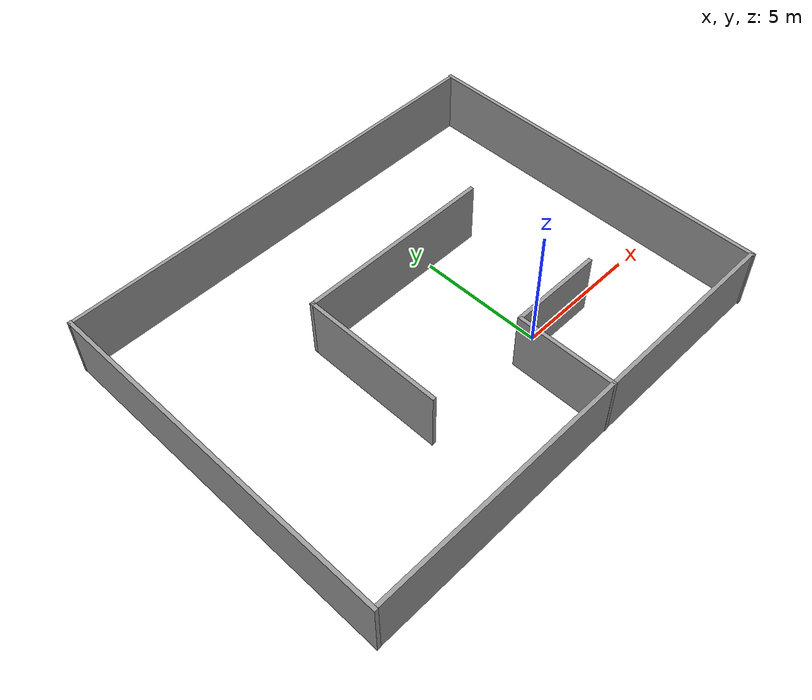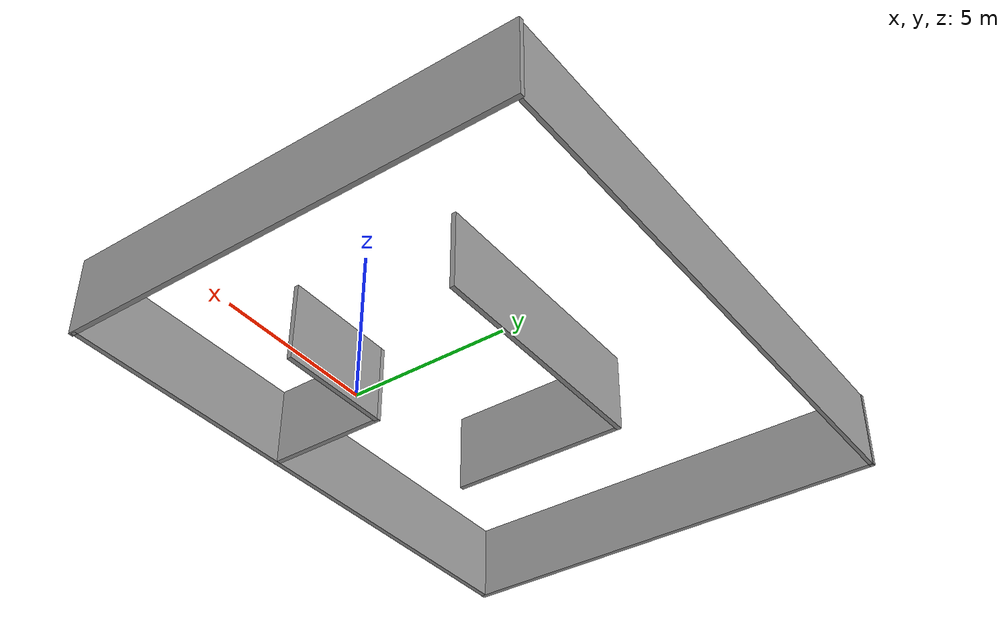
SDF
<?xml version='1.0'?>
<sdf version='1.7'>
  <model name='demo_race_track2'>
    <link name='Wall_10'>
      <pose>0.522756 -0.328861 0 0 -0 0</pose>
      <self_collide>0</self_collide>
      <enable_wind>0</enable_wind>
      <kinematic>0</kinematic>
      <visual name='Wall_10_Visual'>
        <pose>0 0 1.25 0 -0 0</pose>
        <geometry>
          <box>
            <size>3.75 0.15 2.5</size>
          </box>
        </geometry>
        <material>
          <script>
            <uri>file://media/materials/scripts/gazebo.material</uri>
            <name>Gazebo/Grey</name>
          </script>
          <ambient>1 1 1 1</ambient>
          <shader type='pixel'/>
        </material>
        <meta>
          <layer>0</layer>
        </meta>
        <transparency>0</transparency>
        <cast_shadows>1</cast_shadows>
      </visual>
      <collision name='Wall_10_Collision'>
        <laser_retro>0</laser_retro>
        <max_contacts>10</max_contacts>
        <pose>0 0 1.25 0 -0 0</pose>
        <geometry>
          <box>
            <size>3.75 0.15 2.5</size>
          </box>
        </geometry>
        <surface>
          <friction>
            <ode>
              <mu>1</mu>
              <mu2>1</mu2>
              <fdir1>0 0 0</fdir1>
              <slip1>0</slip1>
              <slip2>0</slip2>
            </ode>
            <torsional>
              <coefficient>1</coefficient>
              <patch_radius>0</patch_radius>
              <surface_radius>0</surface_radius>
              <use_patch_radius>1</use_patch_radius>
              <ode>
                <slip>0</slip>
              </ode>
            </torsional>
          </friction>
          <bounce>
            <restitution_coefficient>0</restitution_coefficient>
            <threshold>1e+06</threshold>
          </bounce>
          <contact>
            <collide_without_contact>0</collide_without_contact>
            <collide_without_contact_bitmask>1</collide_without_contact_bitmask>
            <collide_bitmask>1</collide_bitmask>
            <ode>
              <soft_cfm>0</soft_cfm>
              <soft_erp>0.2</soft_erp>
              <kp>1e+13</kp>
              <kd>1</kd>
              <max_vel>0.01</max_vel>
              <min_depth>0</min_depth>
            </ode>
            <bullet>
              <split_impulse>1</split_impulse>
              <split_impulse_penetration_threshold>-0.01</split_impulse_penetration_threshold>
              <soft_cfm>0</soft_cfm>
              <soft_erp>0.2</soft_erp>
              <kp>1e+13</kp>
              <kd>1</kd>
            </bullet>
          </contact>
        </surface>
      </collision>
    </link>
    <link name='Wall_14'>
      <pose>-5.62865 2.25752 0 0 -0 1.5708</pose>
      <self_collide>0</self_collide>
      <enable_wind>0</enable_wind>
      <kinematic>0</kinematic>
      <inertial>
        <inertia>
          <ixx>0</ixx>
          <ixy>0</ixy>
          <ixz>0</ixz>
          <iyy>0</iyy>
          <iyz>0</iyz>
          <izz>0</izz>
        </inertia>
        <mass>0</mass>
        <pose>0 0 0 0 -0 0</pose>
      </inertial>
      <visual name='Wall_14_Visual'>
        <pose>0 0 1.25 0 -0 0</pose>
        <geometry>
          <box>
            <size>5.68084 0.15 2.5</size>
          </box>
        </geometry>
        <material>
          <script>
            <uri>file://media/materials/scripts/gazebo.material</uri>
            <name>Gazebo/Grey</name>
          </script>
          <ambient>1 1 1 1</ambient>
          <shader type='pixel'/>
        </material>
        <meta>
          <layer>0</layer>
        </meta>
        <transparency>0</transparency>
        <cast_shadows>1</cast_shadows>
      </visual>
      <collision name='Wall_14_Collision'>
        <laser_retro>0</laser_retro>
        <max_contacts>10</max_contacts>
        <pose>0 0 1.25 0 -0 0</pose>
        <geometry>
          <box>
            <size>5.68084 0.15 2.5</size>
          </box>
        </geometry>
        <surface>
          <friction>
            <ode>
              <mu>1</mu>
              <mu2>1</mu2>
              <fdir1>0 0 0</fdir1>
              <slip1>0</slip1>
              <slip2>0</slip2>
            </ode>
            <torsional>
              <coefficient>1</coefficient>
              <patch_radius>0</patch_radius>
              <surface_radius>0</surface_radius>
              <use_patch_radius>1</use_patch_radius>
              <ode>
                <slip>0</slip>
              </ode>
            </torsional>
          </friction>
          <bounce>
            <restitution_coefficient>0</restitution_coefficient>
            <threshold>1e+06</threshold>
          </bounce>
          <contact>
            <collide_without_contact>0</collide_without_contact>
            <collide_without_contact_bitmask>1</collide_without_contact_bitmask>
            <collide_bitmask>1</collide_bitmask>
            <ode>
              <soft_cfm>0</soft_cfm>
              <soft_erp>0.2</soft_erp>
              <kp>1e+13</kp>
              <kd>1</kd>
              <max_vel>0.01</max_vel>
              <min_depth>0</min_depth>
            </ode>
            <bullet>
              <split_impulse>1</split_impulse>
              <split_impulse_penetration_threshold>-0.01</split_impulse_penetration_threshold>
              <soft_cfm>0</soft_cfm>
              <soft_erp>0.2</soft_erp>
              <kp>1e+13</kp>
              <kd>1</kd>
            </bullet>
          </contact>
        </surface>
      </collision>
    </link>
    <link name='Wall_15'>
      <pose>-1.74057 5.02435 0 0 -0 0</pose>
      <self_collide>0</self_collide>
      <enable_wind>0</enable_wind>
      <kinematic>0</kinematic>
      <inertial>
        <inertia>
          <ixx>0</ixx>
          <ixy>0</ixy>
          <ixz>0</ixz>
          <iyy>0</iyy>
          <iyz>0</iyz>
          <izz>0</izz>
        </inertia>
        <mass>0</mass>
        <pose>0 0 0 0 -0 0</pose>
      </inertial>
      <visual name='Wall_15_Visual'>
        <pose>0 0 1.25 0 -0 0</pose>
        <geometry>
          <box>
            <size>7.92685 0.15 2.5</size>
          </box>
        </geometry>
        <material>
          <script>
            <uri>file://media/materials/scripts/gazebo.material</uri>
            <name>Gazebo/Grey</name>
          </script>
          <ambient>1 1 1 1</ambient>
          <shader type='pixel'/>
        </material>
        <meta>
          <layer>0</layer>
        </meta>
        <transparency>0</transparency>
        <cast_shadows>1</cast_shadows>
      </visual>
      <collision name='Wall_15_Collision'>
        <laser_retro>0</laser_retro>
        <max_contacts>10</max_contacts>
        <pose>0 0 1.25 0 -0 0</pose>
        <geometry>
          <box>
            <size>7.92685 0.15 2.5</size>
          </box>
        </geometry>
        <surface>
          <friction>
            <ode>
              <mu>1</mu>
              <mu2>1</mu2>
              <fdir1>0 0 0</fdir1>
              <slip1>0</slip1>
              <slip2>0</slip2>
            </ode>
            <torsional>
              <coefficient>1</coefficient>
              <patch_radius>0</patch_radius>
              <surface_radius>0</surface_radius>
              <use_patch_radius>1</use_patch_radius>
              <ode>
                <slip>0</slip>
              </ode>
            </torsional>
          </friction>
          <bounce>
            <restitution_coefficient>0</restitution_coefficient>
            <threshold>1e+06</threshold>
          </bounce>
          <contact>
            <collide_without_contact>0</collide_without_contact>
            <collide_without_contact_bitmask>1</collide_without_contact_bitmask>
            <collide_bitmask>1</collide_bitmask>
            <ode>
              <soft_cfm>0</soft_cfm>
              <soft_erp>0.2</soft_erp>
              <kp>1e+13</kp>
              <kd>1</kd>
              <max_vel>0.01</max_vel>
              <min_depth>0</min_depth>
            </ode>
            <bullet>
              <split_impulse>1</split_impulse>
              <split_impulse_penetration_threshold>-0.01</split_impulse_penetration_threshold>
              <soft_cfm>0</soft_cfm>
              <soft_erp>0.2</soft_erp>
              <kp>1e+13</kp>
              <kd>1</kd>
            </bullet>
          </contact>
        </surface>
      </collision>
    </link>
    <link name='Wall_4'>
      <pose>6.49769 2.94937 0 0 -0 1.5708</pose>
      <self_collide>0</self_collide>
      <enable_wind>0</enable_wind>
      <kinematic>0</kinematic>
      <inertial>
        <inertia>
          <ixx>0</ixx>
          <ixy>0</ixy>
          <ixz>0</ixz>
          <iyy>0</iyy>
          <iyz>0</iyz>
          <izz>0</izz>
        </inertia>
        <mass>0</mass>
        <pose>0 0 0 0 -0 0</pose>
      </inertial>
      <visual name='Wall_4_Visual'>
        <pose>0 0 1.25 0 -0 0</pose>
        <geometry>
          <box>
            <size>14.485 0.15 2.5</size>
          </box>
        </geometry>
        <material>
          <script>
            <uri>file://media/materials/scripts/gazebo.material</uri>
            <name>Gazebo/Grey</name>
          </script>
          <ambient>1 1 1 1</ambient>
          <shader type='pixel'/>
        </material>
        <meta>
          <layer>0</layer>
        </meta>
        <transparency>0</transparency>
        <cast_shadows>1</cast_shadows>
      </visual>
      <collision name='Wall_4_Collision'>
        <laser_retro>0</laser_retro>
        <max_contacts>10</max_contacts>
        <pose>0 0 1.25 0 -0 0</pose>
        <geometry>
          <box>
            <size>14.485 0.15 2.5</size>
          </box>
        </geometry>
        <surface>
          <friction>
            <ode>
              <mu>1</mu>
              <mu2>1</mu2>
              <fdir1>0 0 0</fdir1>
              <slip1>0</slip1>
              <slip2>0</slip2>
            </ode>
            <torsional>
              <coefficient>1</coefficient>
              <patch_radius>0</patch_radius>
              <surface_radius>0</surface_radius>
              <use_patch_radius>1</use_patch_radius>
              <ode>
                <slip>0</slip>
              </ode>
            </torsional>
          </friction>
          <bounce>
            <restitution_coefficient>0</restitution_coefficient>
            <threshold>1e+06</threshold>
          </bounce>
          <contact>
            <collide_without_contact>0</collide_without_contact>
            <collide_without_contact_bitmask>1</collide_without_contact_bitmask>
            <collide_bitmask>1</collide_bitmask>
            <ode>
              <soft_cfm>0</soft_cfm>
              <soft_erp>0.2</soft_erp>
              <kp>1e+13</kp>
              <kd>1</kd>
              <max_vel>0.01</max_vel>
              <min_depth>0</min_depth>
            </ode>
            <bullet>
              <split_impulse>1</split_impulse>
              <split_impulse_penetration_threshold>-0.01</split_impulse_penetration_threshold>
              <soft_cfm>0</soft_cfm>
              <soft_erp>0.2</soft_erp>
              <kp>1e+13</kp>
              <kd>1</kd>
            </bullet>
          </contact>
        </surface>
      </collision>
    </link>
    <link name='Wall_5'>
      <pose>-2.68974 10.0886 0 0 -0 3.14159</pose>
      <self_collide>0</self_collide>
      <enable_wind>0</enable_wind>
      <kinematic>0</kinematic>
      <inertial>
        <inertia>
          <ixx>0</ixx>
          <ixy>0</ixy>
          <ixz>0</ixz>
          <iyy>0</iyy>
          <iyz>0</iyz>
          <izz>0</izz>
        </inertia>
        <mass>0</mass>
        <pose>0 0 0 0 -0 0</pose>
      </inertial>
      <visual name='Wall_5_Visual'>
        <pose>0 0 1.25 0 -0 0</pose>
        <geometry>
          <box>
            <size>18.2163 0.127451 2.5</size>
          </box>
        </geometry>
        <material>
          <script>
            <uri>file://media/materials/scripts/gazebo.material</uri>
            <name>Gazebo/Grey</name>
          </script>
          <ambient>1 1 1 1</ambient>
          <shader type='pixel'/>
        </material>
        <meta>
          <layer>0</layer>
        </meta>
        <transparency>0</transparency>
        <cast_shadows>1</cast_shadows>
      </visual>
      <collision name='Wall_5_Collision'>
        <laser_retro>0</laser_retro>
        <max_contacts>10</max_contacts>
        <pose>0 0 1.25 0 -0 0</pose>
        <geometry>
          <box>
            <size>18.2163 0.127451 2.5</size>
          </box>
        </geometry>
        <surface>
          <friction>
            <ode>
              <mu>1</mu>
              <mu2>1</mu2>
              <fdir1>0 0 0</fdir1>
              <slip1>0</slip1>
              <slip2>0</slip2>
            </ode>
            <torsional>
              <coefficient>1</coefficient>
              <patch_radius>0</patch_radius>
              <surface_radius>0</surface_radius>
              <use_patch_radius>1</use_patch_radius>
              <ode>
                <slip>0</slip>
              </ode>
            </torsional>
          </friction>
          <bounce>
            <restitution_coefficient>0</restitution_coefficient>
            <threshold>1e+06</threshold>
          </bounce>
          <contact>
            <collide_without_contact>0</collide_without_contact>
            <collide_without_contact_bitmask>1</collide_without_contact_bitmask>
            <collide_bitmask>1</collide_bitmask>
            <ode>
              <soft_cfm>0</soft_cfm>
              <soft_erp>0.2</soft_erp>
              <kp>1e+13</kp>
              <kd>1</kd>
              <max_vel>0.01</max_vel>
              <min_depth>0</min_depth>
            </ode>
            <bullet>
              <split_impulse>1</split_impulse>
              <split_impulse_penetration_threshold>-0.01</split_impulse_penetration_threshold>
              <soft_cfm>0</soft_cfm>
              <soft_erp>0.2</soft_erp>
              <kp>1e+13</kp>
              <kd>1</kd>
            </bullet>
          </contact>
        </surface>
      </collision>
    </link>
    <link name='Wall_6'>
      <pose>-11.7177 2.95873 0 0 0 -1.5708</pose>
      <self_collide>0</self_collide>
      <enable_wind>0</enable_wind>
      <kinematic>0</kinematic>
      <inertial>
        <inertia>
          <ixx>0</ixx>
          <ixy>0</ixy>
          <ixz>0</ixz>
          <iyy>0</iyy>
          <iyz>0</iyz>
          <izz>0</izz>
        </inertia>
        <mass>0</mass>
        <pose>0 0 0 0 -0 0</pose>
      </inertial>
      <visual name='Wall_6_Visual'>
        <pose>0 0 1.25 0 -0 0</pose>
        <geometry>
          <box>
            <size>14.4251 0.15 2.5</size>
          </box>
        </geometry>
        <material>
          <script>
            <uri>file://media/materials/scripts/gazebo.material</uri>
            <name>Gazebo/Grey</name>
          </script>
          <ambient>1 1 1 1</ambient>
          <shader type='pixel'/>
        </material>
        <meta>
          <layer>0</layer>
        </meta>
        <transparency>0</transparency>
        <cast_shadows>1</cast_shadows>
      </visual>
      <collision name='Wall_6_Collision'>
        <laser_retro>0</laser_retro>
        <max_contacts>10</max_contacts>
        <pose>0 0 1.25 0 -0 0</pose>
        <geometry>
          <box>
            <size>14.4251 0.15 2.5</size>
          </box>
        </geometry>
        <surface>
          <friction>
            <ode>
              <mu>1</mu>
              <mu2>1</mu2>
              <fdir1>0 0 0</fdir1>
              <slip1>0</slip1>
              <slip2>0</slip2>
            </ode>
            <torsional>
              <coefficient>1</coefficient>
              <patch_radius>0</patch_radius>
              <surface_radius>0</surface_radius>
              <use_patch_radius>1</use_patch_radius>
              <ode>
                <slip>0</slip>
              </ode>
            </torsional>
          </friction>
          <bounce>
            <restitution_coefficient>0</restitution_coefficient>
            <threshold>1e+06</threshold>
          </bounce>
          <contact>
            <collide_without_contact>0</collide_without_contact>
            <collide_without_contact_bitmask>1</collide_without_contact_bitmask>
            <collide_bitmask>1</collide_bitmask>
            <ode>
              <soft_cfm>0</soft_cfm>
              <soft_erp>0.2</soft_erp>
              <kp>1e+13</kp>
              <kd>1</kd>
              <max_vel>0.01</max_vel>
              <min_depth>0</min_depth>
            </ode>
            <bullet>
              <split_impulse>1</split_impulse>
              <split_impulse_penetration_threshold>-0.01</split_impulse_penetration_threshold>
              <soft_cfm>0</soft_cfm>
              <soft_erp>0.2</soft_erp>
              <kp>1e+13</kp>
              <kd>1</kd>
            </bullet>
          </contact>
        </surface>
      </collision>
    </link>
    <link name='Wall_7'>
      <pose>-2.55902 -4.17114 0 0 -0 0</pose>
      <self_collide>0</self_collide>
      <enable_wind>0</enable_wind>
      <kinematic>0</kinematic>
      <inertial>
        <inertia>
          <ixx>0</ixx>
          <ixy>0</ixy>
          <ixz>0</ixz>
          <iyy>0</iyy>
          <iyz>0</iyz>
          <izz>0</izz>
        </inertia>
        <mass>0</mass>
        <pose>0 0 0 0 -0 0</pose>
      </inertial>
      <visual name='Wall_7_Visual'>
        <pose>0 0 1.25 0 -0 0</pose>
        <geometry>
          <box>
            <size>18.1844 0.15 2.5</size>
          </box>
        </geometry>
        <material>
          <script>
            <uri>file://media/materials/scripts/gazebo.material</uri>
            <name>Gazebo/Grey</name>
          </script>
          <ambient>1 1 1 1</ambient>
          <shader type='pixel'/>
        </material>
        <meta>
          <layer>0</layer>
        </meta>
        <transparency>0</transparency>
        <cast_shadows>1</cast_shadows>
      </visual>
      <collision name='Wall_7_Collision'>
        <laser_retro>0</laser_retro>
        <max_contacts>10</max_contacts>
        <pose>0 0 1.25 0 -0 0</pose>
        <geometry>
          <box>
            <size>18.1844 0.15 2.5</size>
          </box>
        </geometry>
        <surface>
          <friction>
            <ode>
              <mu>1</mu>
              <mu2>1</mu2>
              <fdir1>0 0 0</fdir1>
              <slip1>0</slip1>
              <slip2>0</slip2>
            </ode>
            <torsional>
              <coefficient>1</coefficient>
              <patch_radius>0</patch_radius>
              <surface_radius>0</surface_radius>
              <use_patch_radius>1</use_patch_radius>
              <ode>
                <slip>0</slip>
              </ode>
            </torsional>
          </friction>
          <bounce>
            <restitution_coefficient>0</restitution_coefficient>
            <threshold>1e+06</threshold>
          </bounce>
          <contact>
            <collide_without_contact>0</collide_without_contact>
            <collide_without_contact_bitmask>1</collide_without_contact_bitmask>
            <collide_bitmask>1</collide_bitmask>
            <ode>
              <soft_cfm>0</soft_cfm>
              <soft_erp>0.2</soft_erp>
              <kp>1e+13</kp>
              <kd>1</kd>
              <max_vel>0.01</max_vel>
              <min_depth>0</min_depth>
            </ode>
            <bullet>
              <split_impulse>1</split_impulse>
              <split_impulse_penetration_threshold>-0.01</split_impulse_penetration_threshold>
              <soft_cfm>0</soft_cfm>
              <soft_erp>0.2</soft_erp>
              <kp>1e+13</kp>
              <kd>1</kd>
            </bullet>
          </contact>
        </surface>
      </collision>
    </link>
    <link name='Wall_9'>
      <pose>-1.27724 -2.25386 0 0 -0 1.5708</pose>
      <self_collide>0</self_collide>
      <enable_wind>0</enable_wind>
      <kinematic>0</kinematic>
      <visual name='Wall_9_Visual'>
        <pose>0 0 1.25 0 -0 0</pose>
        <geometry>
          <box>
            <size>4 0.15 2.5</size>
          </box>
        </geometry>
        <material>
          <script>
            <uri>file://media/materials/scripts/gazebo.material</uri>
            <name>Gazebo/Grey</name>
          </script>
          <ambient>1 1 1 1</ambient>
          <shader type='pixel'/>
        </material>
        <meta>
          <layer>0</layer>
        </meta>
        <transparency>0</transparency>
        <cast_shadows>1</cast_shadows>
      </visual>
      <collision name='Wall_9_Collision'>
        <laser_retro>0</laser_retro>
        <max_contacts>10</max_contacts>
        <pose>0 0 1.25 0 -0 0</pose>
        <geometry>
          <box>
            <size>4 0.15 2.5</size>
          </box>
        </geometry>
        <surface>
          <friction>
            <ode>
              <mu>1</mu>
              <mu2>1</mu2>
              <fdir1>0 0 0</fdir1>
              <slip1>0</slip1>
              <slip2>0</slip2>
            </ode>
            <torsional>
              <coefficient>1</coefficient>
              <patch_radius>0</patch_radius>
              <surface_radius>0</surface_radius>
              <use_patch_radius>1</use_patch_radius>
              <ode>
                <slip>0</slip>
              </ode>
            </torsional>
          </friction>
          <bounce>
            <restitution_coefficient>0</restitution_coefficient>
            <threshold>1e+06</threshold>
          </bounce>
          <contact>
            <collide_without_contact>0</collide_without_contact>
            <collide_without_contact_bitmask>1</collide_without_contact_bitmask>
            <collide_bitmask>1</collide_bitmask>
            <ode>
              <soft_cfm>0</soft_cfm>
              <soft_erp>0.2</soft_erp>
              <kp>1e+13</kp>
              <kd>1</kd>
              <max_vel>0.01</max_vel>
              <min_depth>0</min_depth>
            </ode>
            <bullet>
              <split_impulse>1</split_impulse>
              <split_impulse_penetration_threshold>-0.01</split_impulse_penetration_threshold>
              <soft_cfm>0</soft_cfm>
              <soft_erp>0.2</soft_erp>
              <kp>1e+13</kp>
              <kd>1</kd>
            </bullet>
          </contact>
        </surface>
      </collision>
    </link>
    <static>1</static>
    <allow_auto_disable>1</allow_auto_disable>
  </model>
</sdf>
